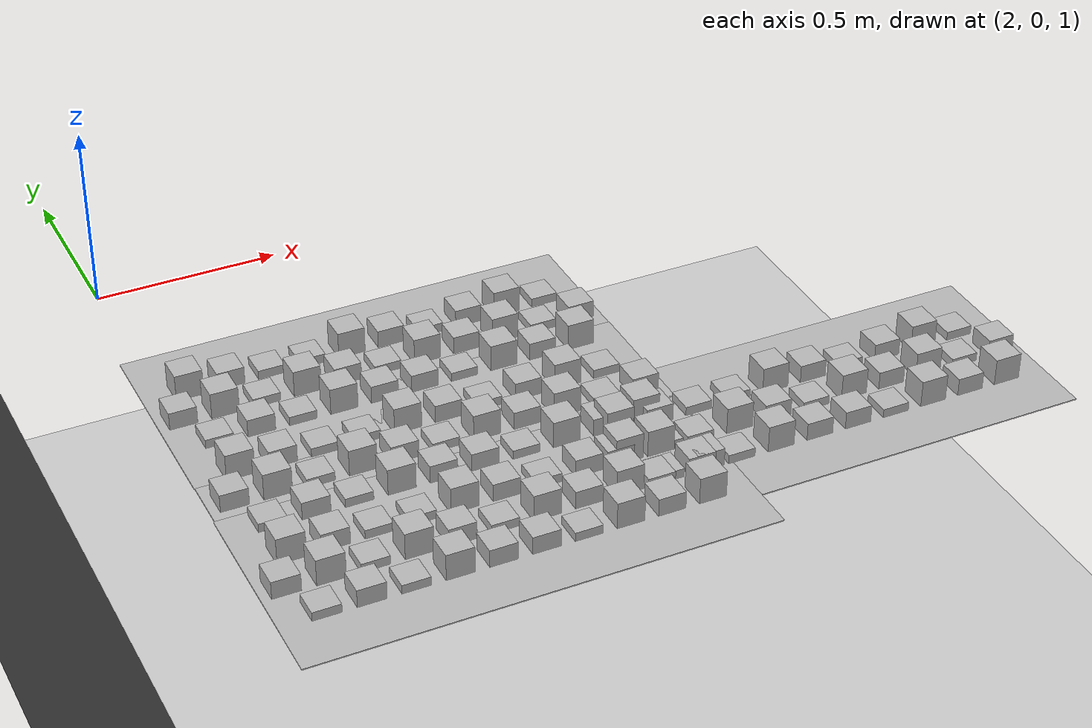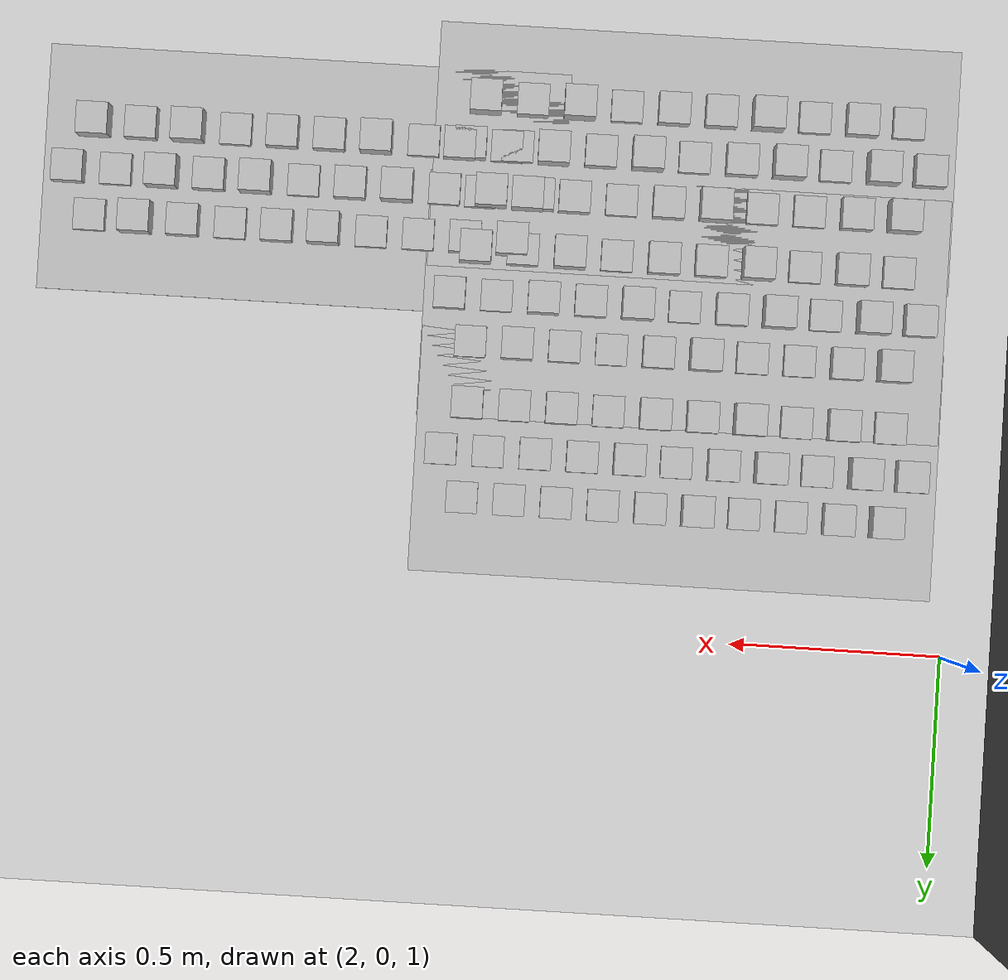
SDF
<sdf version="1.6">
 <world name="default">
  <model name="ground_plane">
   <static>1</static>
   <link name="link">
    <collision name="collision">
     <geometry><plane><normal>0 0 1</normal><size>100 100</size></plane></geometry>
     <surface><friction><ode><mu>100</mu><mu2>50</mu2></ode></friction></surface>
    </collision>
    <visual name="visual">
     <cast_shadows>0</cast_shadows>
     <geometry><plane><normal>0 0 1</normal><size>100 100</size></plane></geometry>
     <material>
      <script><uri>file://media/materials/scripts/gazebo.material</uri><name>Gazebo/Grey</name></script>
     </material>
    </visual>
   </link>
  </model>
  <model name="asphalt_plane">
   <static>1</static>
   <link name="link">
    <collision name="collision">
     <geometry><box><size>20 20 1.4296</size></box></geometry>
     <surface><friction><ode><mu>100</mu><mu2>50</mu2></ode></friction></surface>
    </collision>
    <visual name="visual">
     <cast_shadows>0</cast_shadows>
     <geometry><box><size>20 20 1.4296</size></box></geometry>
     <material>
      <script>
       <uri>model://asphalt_plane/materials/scripts</uri>
       <uri>model://asphalt_plane/materials/textures</uri>
       <name>vrc/asphalt</name>
      </script>
     </material>
    </visual>
   </link>
   <pose>-8.53833 2.29833 0.165376 0 -0 0</pose>
  </model>
  <model name="frc2016_roughterrain_1_clone_8">
   <static>0</static>
   <link name="link">
    <visual name="platform">
     <pose>0 0 0.08269 0 -0 0</pose>
     <geometry><box><size>1.27 0.5969 0.003175</size></box></geometry>
    </visual>
    <collision name="platform">
     <pose>0 0 0.08269 0 -0 0</pose>
     <geometry><box><size>1.27 0.5969 0.003175</size></box></geometry>
    </collision>
    <visual name="row1_block1_sm">
     <pose>0.51435 0.1143 0.09698 0 -0 0</pose>
     <geometry><box><size>0.0762 0.0762 0.0254</size></box></geometry>
    </visual>
    <collision name="row1_block1_sm">
     <pose>0.51435 0.1143 0.09698 0 -0 0</pose>
     <geometry><box><size>0.0762 0.0762 0.0254</size></box></geometry>
    </collision>
    <visual name="row1_block2_lg">
     <pose>0.40005 0.1143 0.12238 0 -0 0</pose>
     <geometry><box><size>0.0762 0.0762 0.0762</size></box></geometry>
    </visual>
    <collision name="row1_block2_lg">
     <pose>0.40005 0.1143 0.12238 0 -0 0</pose>
     <geometry><box><size>0.0762 0.0762 0.0762</size></box></geometry>
    </collision>
    <visual name="row1_block3_md">
     <pose>0.28575 0.1143 0.10968 0 -0 0</pose>
     <geometry><box><size>0.0762 0.0762 0.0508</size></box></geometry>
    </visual>
    <collision name="row1_block3_md">
     <pose>0.28575 0.1143 0.10968 0 -0 0</pose>
     <geometry><box><size>0.0762 0.0762 0.0508</size></box></geometry>
    </collision>
    <visual name="row1_block4_sm">
     <pose>0.17145 0.1143 0.09698 0 -0 0</pose>
     <geometry><box><size>0.0762 0.0762 0.0254</size></box></geometry>
    </visual>
    <collision name="row1_block4_sm">
     <pose>0.17145 0.1143 0.09698 0 -0 0</pose>
     <geometry><box><size>0.0762 0.0762 0.0254</size></box></geometry>
    </collision>
    <visual name="row1_block5_md">
     <pose>0.05715 0.1143 0.10968 0 -0 0</pose>
     <geometry><box><size>0.0762 0.0762 0.0508</size></box></geometry>
    </visual>
    <collision name="row1_block5_md">
     <pose>0.05715 0.1143 0.10968 0 -0 0</pose>
     <geometry><box><size>0.0762 0.0762 0.0508</size></box></geometry>
    </collision>
    <visual name="row1_block6_lg">
     <pose>-0.05715 0.1143 0.12238 0 -0 0</pose>
     <geometry><box><size>0.0762 0.0762 0.0762</size></box></geometry>
    </visual>
    <collision name="row1_block6_lg">
     <pose>-0.05715 0.1143 0.12238 0 -0 0</pose>
     <geometry><box><size>0.0762 0.0762 0.0762</size></box></geometry>
    </collision>
    <visual name="row1_block7_sm">
     <pose>-0.17145 0.1143 0.09698 0 -0 0</pose>
     <geometry><box><size>0.0762 0.0762 0.0254</size></box></geometry>
    </visual>
    <collision name="row1_block7_sm">
     <pose>-0.17145 0.1143 0.09698 0 -0 0</pose>
     <geometry><box><size>0.0762 0.0762 0.0254</size></box></geometry>
    </collision>
    <visual name="row1_block8_sm">
     <pose>-0.28575 0.1143 0.09698 0 -0 0</pose>
     <geometry><box><size>0.0762 0.0762 0.0254</size></box></geometry>
    </visual>
    <collision name="row1_block8_sm">
     <pose>-0.28575 0.1143 0.09698 0 -0 0</pose>
     <geometry><box><size>0.0762 0.0762 0.0254</size></box></geometry>
    </collision>
    <visual name="row1_block9_md">
     <pose>-0.40005 0.1143 0.10968 0 -0 0</pose>
     <geometry><box><size>0.0762 0.0762 0.0508</size></box></geometry>
    </visual>
    <collision name="row1_block9_md">
     <pose>-0.40005 0.1143 0.10968 0 -0 0</pose>
     <geometry><box><size>0.0762 0.0762 0.0508</size></box></geometry>
    </collision>
    <visual name="row1_block10_lg">
     <pose>-0.51435 0.1143 0.12238 0 -0 0</pose>
     <geometry><box><size>0.0762 0.0762 0.0762</size></box></geometry>
    </visual>
    <collision name="row1_block10_lg">
     <pose>-0.51435 0.1143 0.12238 0 -0 0</pose>
     <geometry><box><size>0.0762 0.0762 0.0762</size></box></geometry>
    </collision>
    <visual name="row2_block1_md">
     <pose>0.5715 0 0.10968 0 -0 0</pose>
     <geometry><box><size>0.0762 0.0762 0.0508</size></box></geometry>
    </visual>
    <collision name="row2_block1_md">
     <pose>0.5715 0 0.10968 0 -0 0</pose>
     <geometry><box><size>0.0762 0.0762 0.0508</size></box></geometry>
    </collision>
    <visual name="row2_block2_sm">
     <pose>0.4572 0 0.09698 0 -0 0</pose>
     <geometry><box><size>0.0762 0.0762 0.0254</size></box></geometry>
    </visual>
    <collision name="row2_block2_sm">
     <pose>0.4572 0 0.09698 0 -0 0</pose>
     <geometry><box><size>0.0762 0.0762 0.0254</size></box></geometry>
    </collision>
    <visual name="row2_block3_lg">
     <pose>0.3429 0 0.12238 0 -0 0</pose>
     <geometry><box><size>0.0762 0.0762 0.0762</size></box></geometry>
    </visual>
    <collision name="row2_block3_lg">
     <pose>0.3429 0 0.12238 0 -0 0</pose>
     <geometry><box><size>0.0762 0.0762 0.0762</size></box></geometry>
    </collision>
    <visual name="row2_block4_md">
     <pose>0.2286 0 0.10968 0 -0 0</pose>
     <geometry><box><size>0.0762 0.0762 0.0508</size></box></geometry>
    </visual>
    <collision name="row2_block4_md">
     <pose>0.2286 0 0.10968 0 -0 0</pose>
     <geometry><box><size>0.0762 0.0762 0.0508</size></box></geometry>
    </collision>
    <visual name="row2_block5_lg">
     <pose>0.1143 0 0.12238 0 -0 0</pose>
     <geometry><box><size>0.0762 0.0762 0.0762</size></box></geometry>
    </visual>
    <collision name="row2_block5_lg">
     <pose>0.1143 0 0.12238 0 -0 0</pose>
     <geometry><box><size>0.0762 0.0762 0.0762</size></box></geometry>
    </collision>
    <visual name="row2_block6_sm">
     <pose>0 0 0.09698 0 -0 0</pose>
     <geometry><box><size>0.0762 0.0762 0.0254</size></box></geometry>
    </visual>
    <collision name="row2_block6_sm">
     <pose>0 0 0.09698 0 -0 0</pose>
     <geometry><box><size>0.0762 0.0762 0.0254</size></box></geometry>
    </collision>
    <visual name="row2_block7_md">
     <pose>-0.1143 0 0.10968 0 -0 0</pose>
     <geometry><box><size>0.0762 0.0762 0.0508</size></box></geometry>
    </visual>
    <collision name="row2_block7_md">
     <pose>-0.1143 0 0.10968 0 -0 0</pose>
     <geometry><box><size>0.0762 0.0762 0.0508</size></box></geometry>
    </collision>
    <visual name="row2_block8_lg">
     <pose>-0.2286 0 0.12238 0 -0 0</pose>
     <geometry><box><size>0.0762 0.0762 0.0762</size></box></geometry>
    </visual>
    <collision name="row2_block8_lg">
     <pose>-0.2286 0 0.12238 0 -0 0</pose>
     <geometry><box><size>0.0762 0.0762 0.0762</size></box></geometry>
    </collision>
    <visual name="row2_block9_sm">
     <pose>-0.3429 0 0.09698 0 -0 0</pose>
     <geometry><box><size>0.0762 0.0762 0.0254</size></box></geometry>
    </visual>
    <collision name="row2_block9_sm">
     <pose>-0.3429 0 0.09698 0 -0 0</pose>
     <geometry><box><size>0.0762 0.0762 0.0254</size></box></geometry>
    </collision>
    <visual name="row2_block10_lg">
     <pose>-0.4572 0 0.12238 0 -0 0</pose>
     <geometry><box><size>0.0762 0.0762 0.0762</size></box></geometry>
    </visual>
    <collision name="row2_block10_lg">
     <pose>-0.4572 0 0.12238 0 -0 0</pose>
     <geometry><box><size>0.0762 0.0762 0.0762</size></box></geometry>
    </collision>
    <visual name="row2_block11_md">
     <pose>-0.5715 0 0.10968 0 -0 0</pose>
     <geometry><box><size>0.0762 0.0762 0.0508</size></box></geometry>
    </visual>
    <collision name="row2_block11_md">
     <pose>-0.5715 0 0.10968 0 -0 0</pose>
     <geometry><box><size>0.0762 0.0762 0.0508</size></box></geometry>
    </collision>
    <visual name="row3_block1_lg">
     <pose>0.51435 -0.1143 0.12238 0 -0 0</pose>
     <geometry><box><size>0.0762 0.0762 0.0762</size></box></geometry>
    </visual>
    <collision name="row3_block1_lg">
     <pose>0.51435 -0.1143 0.12238 0 -0 0</pose>
     <geometry><box><size>0.0762 0.0762 0.0762</size></box></geometry>
    </collision>
    <visual name="row3_block2_md">
     <pose>0.40005 -0.1143 0.10968 0 -0 0</pose>
     <geometry><box><size>0.0762 0.0762 0.0508</size></box></geometry>
    </visual>
    <collision name="row3_block2_md">
     <pose>0.40005 -0.1143 0.10968 0 -0 0</pose>
     <geometry><box><size>0.0762 0.0762 0.0508</size></box></geometry>
    </collision>
    <visual name="row3_block3_lg">
     <pose>0.28575 -0.1143 0.12238 0 -0 0</pose>
     <geometry><box><size>0.0762 0.0762 0.0762</size></box></geometry>
    </visual>
    <collision name="row3_block3_lg">
     <pose>0.28575 -0.1143 0.12238 0 -0 0</pose>
     <geometry><box><size>0.0762 0.0762 0.0762</size></box></geometry>
    </collision>
    <visual name="row3_block4_sm">
     <pose>0.17145 -0.1143 0.09698 0 -0 0</pose>
     <geometry><box><size>0.0762 0.0762 0.0254</size></box></geometry>
    </visual>
    <collision name="row3_block4_sm">
     <pose>0.17145 -0.1143 0.09698 0 -0 0</pose>
     <geometry><box><size>0.0762 0.0762 0.0254</size></box></geometry>
    </collision>
    <visual name="row3_block5_md">
     <pose>0.05715 -0.1143 0.10968 0 -0 0</pose>
     <geometry><box><size>0.0762 0.0762 0.0508</size></box></geometry>
    </visual>
    <collision name="row3_block5_md">
     <pose>0.05715 -0.1143 0.10968 0 -0 0</pose>
     <geometry><box><size>0.0762 0.0762 0.0508</size></box></geometry>
    </collision>
    <visual name="row3_block6_md">
     <pose>-0.05715 -0.1143 0.10968 0 -0 0</pose>
     <geometry><box><size>0.0762 0.0762 0.0508</size></box></geometry>
    </visual>
    <collision name="row3_block6_md">
     <pose>-0.05715 -0.1143 0.10968 0 -0 0</pose>
     <geometry><box><size>0.0762 0.0762 0.0508</size></box></geometry>
    </collision>
    <visual name="row3_block7_lg">
     <pose>-0.17145 -0.1143 0.12238 0 -0 0</pose>
     <geometry><box><size>0.0762 0.0762 0.0762</size></box></geometry>
    </visual>
    <collision name="row3_block7_lg">
     <pose>-0.17145 -0.1143 0.12238 0 -0 0</pose>
     <geometry><box><size>0.0762 0.0762 0.0762</size></box></geometry>
    </collision>
    <visual name="row3_block8_sm">
     <pose>-0.28575 -0.1143 0.09698 0 -0 0</pose>
     <geometry><box><size>0.0762 0.0762 0.0254</size></box></geometry>
    </visual>
    <collision name="row3_block8_sm">
     <pose>-0.28575 -0.1143 0.09698 0 -0 0</pose>
     <geometry><box><size>0.0762 0.0762 0.0254</size></box></geometry>
    </collision>
    <visual name="row3_block9_md">
     <pose>-0.40005 -0.1143 0.10968 0 -0 0</pose>
     <geometry><box><size>0.0762 0.0762 0.0508</size></box></geometry>
    </visual>
    <collision name="row3_block9_md">
     <pose>-0.40005 -0.1143 0.10968 0 -0 0</pose>
     <geometry><box><size>0.0762 0.0762 0.0508</size></box></geometry>
    </collision>
    <visual name="row3_block10_sm">
     <pose>-0.51435 -0.1143 0.09698 0 -0 0</pose>
     <geometry><box><size>0.0762 0.0762 0.0254</size></box></geometry>
    </visual>
    <collision name="row3_block10_sm">
     <pose>-0.51435 -0.1143 0.09698 0 -0 0</pose>
     <geometry><box><size>0.0762 0.0762 0.0254</size></box></geometry>
    </collision>
   </link>
   <pose>2.6413 -0.424382 0.777128 0 -0 0</pose>
  </model>
  <model name="frc2016_roughterrain_1_clone_9">
   <static>0</static>
   <link name="link">
    <visual name="platform">
     <pose>0 0 0.08269 0 -0 0</pose>
     <geometry><box><size>1.27 0.5969 0.003175</size></box></geometry>
    </visual>
    <collision name="platform">
     <pose>0 0 0.08269 0 -0 0</pose>
     <geometry><box><size>1.27 0.5969 0.003175</size></box></geometry>
    </collision>
    <visual name="row1_block1_sm">
     <pose>0.51435 0.1143 0.09698 0 -0 0</pose>
     <geometry><box><size>0.0762 0.0762 0.0254</size></box></geometry>
    </visual>
    <collision name="row1_block1_sm">
     <pose>0.51435 0.1143 0.09698 0 -0 0</pose>
     <geometry><box><size>0.0762 0.0762 0.0254</size></box></geometry>
    </collision>
    <visual name="row1_block2_lg">
     <pose>0.40005 0.1143 0.12238 0 -0 0</pose>
     <geometry><box><size>0.0762 0.0762 0.0762</size></box></geometry>
    </visual>
    <collision name="row1_block2_lg">
     <pose>0.40005 0.1143 0.12238 0 -0 0</pose>
     <geometry><box><size>0.0762 0.0762 0.0762</size></box></geometry>
    </collision>
    <visual name="row1_block3_md">
     <pose>0.28575 0.1143 0.10968 0 -0 0</pose>
     <geometry><box><size>0.0762 0.0762 0.0508</size></box></geometry>
    </visual>
    <collision name="row1_block3_md">
     <pose>0.28575 0.1143 0.10968 0 -0 0</pose>
     <geometry><box><size>0.0762 0.0762 0.0508</size></box></geometry>
    </collision>
    <visual name="row1_block4_sm">
     <pose>0.17145 0.1143 0.09698 0 -0 0</pose>
     <geometry><box><size>0.0762 0.0762 0.0254</size></box></geometry>
    </visual>
    <collision name="row1_block4_sm">
     <pose>0.17145 0.1143 0.09698 0 -0 0</pose>
     <geometry><box><size>0.0762 0.0762 0.0254</size></box></geometry>
    </collision>
    <visual name="row1_block5_md">
     <pose>0.05715 0.1143 0.10968 0 -0 0</pose>
     <geometry><box><size>0.0762 0.0762 0.0508</size></box></geometry>
    </visual>
    <collision name="row1_block5_md">
     <pose>0.05715 0.1143 0.10968 0 -0 0</pose>
     <geometry><box><size>0.0762 0.0762 0.0508</size></box></geometry>
    </collision>
    <visual name="row1_block6_lg">
     <pose>-0.05715 0.1143 0.12238 0 -0 0</pose>
     <geometry><box><size>0.0762 0.0762 0.0762</size></box></geometry>
    </visual>
    <collision name="row1_block6_lg">
     <pose>-0.05715 0.1143 0.12238 0 -0 0</pose>
     <geometry><box><size>0.0762 0.0762 0.0762</size></box></geometry>
    </collision>
    <visual name="row1_block7_sm">
     <pose>-0.17145 0.1143 0.09698 0 -0 0</pose>
     <geometry><box><size>0.0762 0.0762 0.0254</size></box></geometry>
    </visual>
    <collision name="row1_block7_sm">
     <pose>-0.17145 0.1143 0.09698 0 -0 0</pose>
     <geometry><box><size>0.0762 0.0762 0.0254</size></box></geometry>
    </collision>
    <visual name="row1_block8_sm">
     <pose>-0.28575 0.1143 0.09698 0 -0 0</pose>
     <geometry><box><size>0.0762 0.0762 0.0254</size></box></geometry>
    </visual>
    <collision name="row1_block8_sm">
     <pose>-0.28575 0.1143 0.09698 0 -0 0</pose>
     <geometry><box><size>0.0762 0.0762 0.0254</size></box></geometry>
    </collision>
    <visual name="row1_block9_md">
     <pose>-0.40005 0.1143 0.10968 0 -0 0</pose>
     <geometry><box><size>0.0762 0.0762 0.0508</size></box></geometry>
    </visual>
    <collision name="row1_block9_md">
     <pose>-0.40005 0.1143 0.10968 0 -0 0</pose>
     <geometry><box><size>0.0762 0.0762 0.0508</size></box></geometry>
    </collision>
    <visual name="row1_block10_lg">
     <pose>-0.51435 0.1143 0.12238 0 -0 0</pose>
     <geometry><box><size>0.0762 0.0762 0.0762</size></box></geometry>
    </visual>
    <collision name="row1_block10_lg">
     <pose>-0.51435 0.1143 0.12238 0 -0 0</pose>
     <geometry><box><size>0.0762 0.0762 0.0762</size></box></geometry>
    </collision>
    <visual name="row2_block1_md">
     <pose>0.5715 0 0.10968 0 -0 0</pose>
     <geometry><box><size>0.0762 0.0762 0.0508</size></box></geometry>
    </visual>
    <collision name="row2_block1_md">
     <pose>0.5715 0 0.10968 0 -0 0</pose>
     <geometry><box><size>0.0762 0.0762 0.0508</size></box></geometry>
    </collision>
    <visual name="row2_block2_sm">
     <pose>0.4572 0 0.09698 0 -0 0</pose>
     <geometry><box><size>0.0762 0.0762 0.0254</size></box></geometry>
    </visual>
    <collision name="row2_block2_sm">
     <pose>0.4572 0 0.09698 0 -0 0</pose>
     <geometry><box><size>0.0762 0.0762 0.0254</size></box></geometry>
    </collision>
    <visual name="row2_block3_lg">
     <pose>0.3429 0 0.12238 0 -0 0</pose>
     <geometry><box><size>0.0762 0.0762 0.0762</size></box></geometry>
    </visual>
    <collision name="row2_block3_lg">
     <pose>0.3429 0 0.12238 0 -0 0</pose>
     <geometry><box><size>0.0762 0.0762 0.0762</size></box></geometry>
    </collision>
    <visual name="row2_block4_md">
     <pose>0.2286 0 0.10968 0 -0 0</pose>
     <geometry><box><size>0.0762 0.0762 0.0508</size></box></geometry>
    </visual>
    <collision name="row2_block4_md">
     <pose>0.2286 0 0.10968 0 -0 0</pose>
     <geometry><box><size>0.0762 0.0762 0.0508</size></box></geometry>
    </collision>
    <visual name="row2_block5_lg">
     <pose>0.1143 0 0.12238 0 -0 0</pose>
     <geometry><box><size>0.0762 0.0762 0.0762</size></box></geometry>
    </visual>
    <collision name="row2_block5_lg">
     <pose>0.1143 0 0.12238 0 -0 0</pose>
     <geometry><box><size>0.0762 0.0762 0.0762</size></box></geometry>
    </collision>
    <visual name="row2_block6_sm">
     <pose>0 0 0.09698 0 -0 0</pose>
     <geometry><box><size>0.0762 0.0762 0.0254</size></box></geometry>
    </visual>
    <collision name="row2_block6_sm">
     <pose>0 0 0.09698 0 -0 0</pose>
     <geometry><box><size>0.0762 0.0762 0.0254</size></box></geometry>
    </collision>
    <visual name="row2_block7_md">
     <pose>-0.1143 0 0.10968 0 -0 0</pose>
     <geometry><box><size>0.0762 0.0762 0.0508</size></box></geometry>
    </visual>
    <collision name="row2_block7_md">
     <pose>-0.1143 0 0.10968 0 -0 0</pose>
     <geometry><box><size>0.0762 0.0762 0.0508</size></box></geometry>
    </collision>
    <visual name="row2_block8_lg">
     <pose>-0.2286 0 0.12238 0 -0 0</pose>
     <geometry><box><size>0.0762 0.0762 0.0762</size></box></geometry>
    </visual>
    <collision name="row2_block8_lg">
     <pose>-0.2286 0 0.12238 0 -0 0</pose>
     <geometry><box><size>0.0762 0.0762 0.0762</size></box></geometry>
    </collision>
    <visual name="row2_block9_sm">
     <pose>-0.3429 0 0.09698 0 -0 0</pose>
     <geometry><box><size>0.0762 0.0762 0.0254</size></box></geometry>
    </visual>
    <collision name="row2_block9_sm">
     <pose>-0.3429 0 0.09698 0 -0 0</pose>
     <geometry><box><size>0.0762 0.0762 0.0254</size></box></geometry>
    </collision>
    <visual name="row2_block10_lg">
     <pose>-0.4572 0 0.12238 0 -0 0</pose>
     <geometry><box><size>0.0762 0.0762 0.0762</size></box></geometry>
    </visual>
    <collision name="row2_block10_lg">
     <pose>-0.4572 0 0.12238 0 -0 0</pose>
     <geometry><box><size>0.0762 0.0762 0.0762</size></box></geometry>
    </collision>
    <visual name="row2_block11_md">
     <pose>-0.5715 0 0.10968 0 -0 0</pose>
     <geometry><box><size>0.0762 0.0762 0.0508</size></box></geometry>
    </visual>
    <collision name="row2_block11_md">
     <pose>-0.5715 0 0.10968 0 -0 0</pose>
     <geometry><box><size>0.0762 0.0762 0.0508</size></box></geometry>
    </collision>
    <visual name="row3_block1_lg">
     <pose>0.51435 -0.1143 0.12238 0 -0 0</pose>
     <geometry><box><size>0.0762 0.0762 0.0762</size></box></geometry>
    </visual>
    <collision name="row3_block1_lg">
     <pose>0.51435 -0.1143 0.12238 0 -0 0</pose>
     <geometry><box><size>0.0762 0.0762 0.0762</size></box></geometry>
    </collision>
    <visual name="row3_block2_md">
     <pose>0.40005 -0.1143 0.10968 0 -0 0</pose>
     <geometry><box><size>0.0762 0.0762 0.0508</size></box></geometry>
    </visual>
    <collision name="row3_block2_md">
     <pose>0.40005 -0.1143 0.10968 0 -0 0</pose>
     <geometry><box><size>0.0762 0.0762 0.0508</size></box></geometry>
    </collision>
    <visual name="row3_block3_lg">
     <pose>0.28575 -0.1143 0.12238 0 -0 0</pose>
     <geometry><box><size>0.0762 0.0762 0.0762</size></box></geometry>
    </visual>
    <collision name="row3_block3_lg">
     <pose>0.28575 -0.1143 0.12238 0 -0 0</pose>
     <geometry><box><size>0.0762 0.0762 0.0762</size></box></geometry>
    </collision>
    <visual name="row3_block4_sm">
     <pose>0.17145 -0.1143 0.09698 0 -0 0</pose>
     <geometry><box><size>0.0762 0.0762 0.0254</size></box></geometry>
    </visual>
    <collision name="row3_block4_sm">
     <pose>0.17145 -0.1143 0.09698 0 -0 0</pose>
     <geometry><box><size>0.0762 0.0762 0.0254</size></box></geometry>
    </collision>
    <visual name="row3_block5_md">
     <pose>0.05715 -0.1143 0.10968 0 -0 0</pose>
     <geometry><box><size>0.0762 0.0762 0.0508</size></box></geometry>
    </visual>
    <collision name="row3_block5_md">
     <pose>0.05715 -0.1143 0.10968 0 -0 0</pose>
     <geometry><box><size>0.0762 0.0762 0.0508</size></box></geometry>
    </collision>
    <visual name="row3_block6_md">
     <pose>-0.05715 -0.1143 0.10968 0 -0 0</pose>
     <geometry><box><size>0.0762 0.0762 0.0508</size></box></geometry>
    </visual>
    <collision name="row3_block6_md">
     <pose>-0.05715 -0.1143 0.10968 0 -0 0</pose>
     <geometry><box><size>0.0762 0.0762 0.0508</size></box></geometry>
    </collision>
    <visual name="row3_block7_lg">
     <pose>-0.17145 -0.1143 0.12238 0 -0 0</pose>
     <geometry><box><size>0.0762 0.0762 0.0762</size></box></geometry>
    </visual>
    <collision name="row3_block7_lg">
     <pose>-0.17145 -0.1143 0.12238 0 -0 0</pose>
     <geometry><box><size>0.0762 0.0762 0.0762</size></box></geometry>
    </collision>
    <visual name="row3_block8_sm">
     <pose>-0.28575 -0.1143 0.09698 0 -0 0</pose>
     <geometry><box><size>0.0762 0.0762 0.0254</size></box></geometry>
    </visual>
    <collision name="row3_block8_sm">
     <pose>-0.28575 -0.1143 0.09698 0 -0 0</pose>
     <geometry><box><size>0.0762 0.0762 0.0254</size></box></geometry>
    </collision>
    <visual name="row3_block9_md">
     <pose>-0.40005 -0.1143 0.10968 0 -0 0</pose>
     <geometry><box><size>0.0762 0.0762 0.0508</size></box></geometry>
    </visual>
    <collision name="row3_block9_md">
     <pose>-0.40005 -0.1143 0.10968 0 -0 0</pose>
     <geometry><box><size>0.0762 0.0762 0.0508</size></box></geometry>
    </collision>
    <visual name="row3_block10_sm">
     <pose>-0.51435 -0.1143 0.09698 0 -0 0</pose>
     <geometry><box><size>0.0762 0.0762 0.0254</size></box></geometry>
    </visual>
    <collision name="row3_block10_sm">
     <pose>-0.51435 -0.1143 0.09698 0 -0 0</pose>
     <geometry><box><size>0.0762 0.0762 0.0254</size></box></geometry>
    </collision>
   </link>
   <pose>2.64305 -0.802714 0.777128 0 -0 0</pose>
  </model>
  <model name="frc2016_roughterrain_1_clone_12">
   <static>0</static>
   <link name="link">
    <visual name="platform">
     <pose>0 0 0.08269 0 -0 0</pose>
     <geometry><box><size>1.27 0.5969 0.003175</size></box></geometry>
    </visual>
    <collision name="platform">
     <pose>0 0 0.08269 0 -0 0</pose>
     <geometry><box><size>1.27 0.5969 0.003175</size></box></geometry>
    </collision>
    <visual name="row1_block1_sm">
     <pose>0.51435 0.1143 0.09698 0 -0 0</pose>
     <geometry><box><size>0.0762 0.0762 0.0254</size></box></geometry>
    </visual>
    <collision name="row1_block1_sm">
     <pose>0.51435 0.1143 0.09698 0 -0 0</pose>
     <geometry><box><size>0.0762 0.0762 0.0254</size></box></geometry>
    </collision>
    <visual name="row1_block2_lg">
     <pose>0.40005 0.1143 0.12238 0 -0 0</pose>
     <geometry><box><size>0.0762 0.0762 0.0762</size></box></geometry>
    </visual>
    <collision name="row1_block2_lg">
     <pose>0.40005 0.1143 0.12238 0 -0 0</pose>
     <geometry><box><size>0.0762 0.0762 0.0762</size></box></geometry>
    </collision>
    <visual name="row1_block3_md">
     <pose>0.28575 0.1143 0.10968 0 -0 0</pose>
     <geometry><box><size>0.0762 0.0762 0.0508</size></box></geometry>
    </visual>
    <collision name="row1_block3_md">
     <pose>0.28575 0.1143 0.10968 0 -0 0</pose>
     <geometry><box><size>0.0762 0.0762 0.0508</size></box></geometry>
    </collision>
    <visual name="row1_block4_sm">
     <pose>0.17145 0.1143 0.09698 0 -0 0</pose>
     <geometry><box><size>0.0762 0.0762 0.0254</size></box></geometry>
    </visual>
    <collision name="row1_block4_sm">
     <pose>0.17145 0.1143 0.09698 0 -0 0</pose>
     <geometry><box><size>0.0762 0.0762 0.0254</size></box></geometry>
    </collision>
    <visual name="row1_block5_md">
     <pose>0.05715 0.1143 0.10968 0 -0 0</pose>
     <geometry><box><size>0.0762 0.0762 0.0508</size></box></geometry>
    </visual>
    <collision name="row1_block5_md">
     <pose>0.05715 0.1143 0.10968 0 -0 0</pose>
     <geometry><box><size>0.0762 0.0762 0.0508</size></box></geometry>
    </collision>
    <visual name="row1_block6_lg">
     <pose>-0.05715 0.1143 0.12238 0 -0 0</pose>
     <geometry><box><size>0.0762 0.0762 0.0762</size></box></geometry>
    </visual>
    <collision name="row1_block6_lg">
     <pose>-0.05715 0.1143 0.12238 0 -0 0</pose>
     <geometry><box><size>0.0762 0.0762 0.0762</size></box></geometry>
    </collision>
    <visual name="row1_block7_sm">
     <pose>-0.17145 0.1143 0.09698 0 -0 0</pose>
     <geometry><box><size>0.0762 0.0762 0.0254</size></box></geometry>
    </visual>
    <collision name="row1_block7_sm">
     <pose>-0.17145 0.1143 0.09698 0 -0 0</pose>
     <geometry><box><size>0.0762 0.0762 0.0254</size></box></geometry>
    </collision>
    <visual name="row1_block8_sm">
     <pose>-0.28575 0.1143 0.09698 0 -0 0</pose>
     <geometry><box><size>0.0762 0.0762 0.0254</size></box></geometry>
    </visual>
    <collision name="row1_block8_sm">
     <pose>-0.28575 0.1143 0.09698 0 -0 0</pose>
     <geometry><box><size>0.0762 0.0762 0.0254</size></box></geometry>
    </collision>
    <visual name="row1_block9_md">
     <pose>-0.40005 0.1143 0.10968 0 -0 0</pose>
     <geometry><box><size>0.0762 0.0762 0.0508</size></box></geometry>
    </visual>
    <collision name="row1_block9_md">
     <pose>-0.40005 0.1143 0.10968 0 -0 0</pose>
     <geometry><box><size>0.0762 0.0762 0.0508</size></box></geometry>
    </collision>
    <visual name="row1_block10_lg">
     <pose>-0.51435 0.1143 0.12238 0 -0 0</pose>
     <geometry><box><size>0.0762 0.0762 0.0762</size></box></geometry>
    </visual>
    <collision name="row1_block10_lg">
     <pose>-0.51435 0.1143 0.12238 0 -0 0</pose>
     <geometry><box><size>0.0762 0.0762 0.0762</size></box></geometry>
    </collision>
    <visual name="row2_block1_md">
     <pose>0.5715 0 0.10968 0 -0 0</pose>
     <geometry><box><size>0.0762 0.0762 0.0508</size></box></geometry>
    </visual>
    <collision name="row2_block1_md">
     <pose>0.5715 0 0.10968 0 -0 0</pose>
     <geometry><box><size>0.0762 0.0762 0.0508</size></box></geometry>
    </collision>
    <visual name="row2_block2_sm">
     <pose>0.4572 0 0.09698 0 -0 0</pose>
     <geometry><box><size>0.0762 0.0762 0.0254</size></box></geometry>
    </visual>
    <collision name="row2_block2_sm">
     <pose>0.4572 0 0.09698 0 -0 0</pose>
     <geometry><box><size>0.0762 0.0762 0.0254</size></box></geometry>
    </collision>
    <visual name="row2_block3_lg">
     <pose>0.3429 0 0.12238 0 -0 0</pose>
     <geometry><box><size>0.0762 0.0762 0.0762</size></box></geometry>
    </visual>
    <collision name="row2_block3_lg">
     <pose>0.3429 0 0.12238 0 -0 0</pose>
     <geometry><box><size>0.0762 0.0762 0.0762</size></box></geometry>
    </collision>
    <visual name="row2_block4_md">
     <pose>0.2286 0 0.10968 0 -0 0</pose>
     <geometry><box><size>0.0762 0.0762 0.0508</size></box></geometry>
    </visual>
    <collision name="row2_block4_md">
     <pose>0.2286 0 0.10968 0 -0 0</pose>
     <geometry><box><size>0.0762 0.0762 0.0508</size></box></geometry>
    </collision>
    <visual name="row2_block5_lg">
     <pose>0.1143 0 0.12238 0 -0 0</pose>
     <geometry><box><size>0.0762 0.0762 0.0762</size></box></geometry>
    </visual>
    <collision name="row2_block5_lg">
     <pose>0.1143 0 0.12238 0 -0 0</pose>
     <geometry><box><size>0.0762 0.0762 0.0762</size></box></geometry>
    </collision>
    <visual name="row2_block6_sm">
     <pose>0 0 0.09698 0 -0 0</pose>
     <geometry><box><size>0.0762 0.0762 0.0254</size></box></geometry>
    </visual>
    <collision name="row2_block6_sm">
     <pose>0 0 0.09698 0 -0 0</pose>
     <geometry><box><size>0.0762 0.0762 0.0254</size></box></geometry>
    </collision>
    <visual name="row2_block7_md">
     <pose>-0.1143 0 0.10968 0 -0 0</pose>
     <geometry><box><size>0.0762 0.0762 0.0508</size></box></geometry>
    </visual>
    <collision name="row2_block7_md">
     <pose>-0.1143 0 0.10968 0 -0 0</pose>
     <geometry><box><size>0.0762 0.0762 0.0508</size></box></geometry>
    </collision>
    <visual name="row2_block8_lg">
     <pose>-0.2286 0 0.12238 0 -0 0</pose>
     <geometry><box><size>0.0762 0.0762 0.0762</size></box></geometry>
    </visual>
    <collision name="row2_block8_lg">
     <pose>-0.2286 0 0.12238 0 -0 0</pose>
     <geometry><box><size>0.0762 0.0762 0.0762</size></box></geometry>
    </collision>
    <visual name="row2_block9_sm">
     <pose>-0.3429 0 0.09698 0 -0 0</pose>
     <geometry><box><size>0.0762 0.0762 0.0254</size></box></geometry>
    </visual>
    <collision name="row2_block9_sm">
     <pose>-0.3429 0 0.09698 0 -0 0</pose>
     <geometry><box><size>0.0762 0.0762 0.0254</size></box></geometry>
    </collision>
    <visual name="row2_block10_lg">
     <pose>-0.4572 0 0.12238 0 -0 0</pose>
     <geometry><box><size>0.0762 0.0762 0.0762</size></box></geometry>
    </visual>
    <collision name="row2_block10_lg">
     <pose>-0.4572 0 0.12238 0 -0 0</pose>
     <geometry><box><size>0.0762 0.0762 0.0762</size></box></geometry>
    </collision>
    <visual name="row2_block11_md">
     <pose>-0.5715 0 0.10968 0 -0 0</pose>
     <geometry><box><size>0.0762 0.0762 0.0508</size></box></geometry>
    </visual>
    <collision name="row2_block11_md">
     <pose>-0.5715 0 0.10968 0 -0 0</pose>
     <geometry><box><size>0.0762 0.0762 0.0508</size></box></geometry>
    </collision>
    <visual name="row3_block1_lg">
     <pose>0.51435 -0.1143 0.12238 0 -0 0</pose>
     <geometry><box><size>0.0762 0.0762 0.0762</size></box></geometry>
    </visual>
    <collision name="row3_block1_lg">
     <pose>0.51435 -0.1143 0.12238 0 -0 0</pose>
     <geometry><box><size>0.0762 0.0762 0.0762</size></box></geometry>
    </collision>
    <visual name="row3_block2_md">
     <pose>0.40005 -0.1143 0.10968 0 -0 0</pose>
     <geometry><box><size>0.0762 0.0762 0.0508</size></box></geometry>
    </visual>
    <collision name="row3_block2_md">
     <pose>0.40005 -0.1143 0.10968 0 -0 0</pose>
     <geometry><box><size>0.0762 0.0762 0.0508</size></box></geometry>
    </collision>
    <visual name="row3_block3_lg">
     <pose>0.28575 -0.1143 0.12238 0 -0 0</pose>
     <geometry><box><size>0.0762 0.0762 0.0762</size></box></geometry>
    </visual>
    <collision name="row3_block3_lg">
     <pose>0.28575 -0.1143 0.12238 0 -0 0</pose>
     <geometry><box><size>0.0762 0.0762 0.0762</size></box></geometry>
    </collision>
    <visual name="row3_block4_sm">
     <pose>0.17145 -0.1143 0.09698 0 -0 0</pose>
     <geometry><box><size>0.0762 0.0762 0.0254</size></box></geometry>
    </visual>
    <collision name="row3_block4_sm">
     <pose>0.17145 -0.1143 0.09698 0 -0 0</pose>
     <geometry><box><size>0.0762 0.0762 0.0254</size></box></geometry>
    </collision>
    <visual name="row3_block5_md">
     <pose>0.05715 -0.1143 0.10968 0 -0 0</pose>
     <geometry><box><size>0.0762 0.0762 0.0508</size></box></geometry>
    </visual>
    <collision name="row3_block5_md">
     <pose>0.05715 -0.1143 0.10968 0 -0 0</pose>
     <geometry><box><size>0.0762 0.0762 0.0508</size></box></geometry>
    </collision>
    <visual name="row3_block6_md">
     <pose>-0.05715 -0.1143 0.10968 0 -0 0</pose>
     <geometry><box><size>0.0762 0.0762 0.0508</size></box></geometry>
    </visual>
    <collision name="row3_block6_md">
     <pose>-0.05715 -0.1143 0.10968 0 -0 0</pose>
     <geometry><box><size>0.0762 0.0762 0.0508</size></box></geometry>
    </collision>
    <visual name="row3_block7_lg">
     <pose>-0.17145 -0.1143 0.12238 0 -0 0</pose>
     <geometry><box><size>0.0762 0.0762 0.0762</size></box></geometry>
    </visual>
    <collision name="row3_block7_lg">
     <pose>-0.17145 -0.1143 0.12238 0 -0 0</pose>
     <geometry><box><size>0.0762 0.0762 0.0762</size></box></geometry>
    </collision>
    <visual name="row3_block8_sm">
     <pose>-0.28575 -0.1143 0.09698 0 -0 0</pose>
     <geometry><box><size>0.0762 0.0762 0.0254</size></box></geometry>
    </visual>
    <collision name="row3_block8_sm">
     <pose>-0.28575 -0.1143 0.09698 0 -0 0</pose>
     <geometry><box><size>0.0762 0.0762 0.0254</size></box></geometry>
    </collision>
    <visual name="row3_block9_md">
     <pose>-0.40005 -0.1143 0.10968 0 -0 0</pose>
     <geometry><box><size>0.0762 0.0762 0.0508</size></box></geometry>
    </visual>
    <collision name="row3_block9_md">
     <pose>-0.40005 -0.1143 0.10968 0 -0 0</pose>
     <geometry><box><size>0.0762 0.0762 0.0508</size></box></geometry>
    </collision>
    <visual name="row3_block10_sm">
     <pose>-0.51435 -0.1143 0.09698 0 -0 0</pose>
     <geometry><box><size>0.0762 0.0762 0.0254</size></box></geometry>
    </visual>
    <collision name="row3_block10_sm">
     <pose>-0.51435 -0.1143 0.09698 0 -0 0</pose>
     <geometry><box><size>0.0762 0.0762 0.0254</size></box></geometry>
    </collision>
   </link>
   <pose>3.58518 -1.05424 0.777128 0 -0 0</pose>
  </model>
  <model name="frc2016_roughterrain_1_clone_11_clone_3">
   <static>0</static>
   <link name="link">
    <visual name="platform">
     <pose>0 0 0.08269 0 -0 0</pose>
     <geometry><box><size>1.27 0.5969 0.003175</size></box></geometry>
    </visual>
    <collision name="platform">
     <pose>0 0 0.08269 0 -0 0</pose>
     <geometry><box><size>1.27 0.5969 0.003175</size></box></geometry>
    </collision>
    <visual name="row1_block1_sm">
     <pose>0.51435 0.1143 0.09698 0 -0 0</pose>
     <geometry><box><size>0.0762 0.0762 0.0254</size></box></geometry>
    </visual>
    <collision name="row1_block1_sm">
     <pose>0.51435 0.1143 0.09698 0 -0 0</pose>
     <geometry><box><size>0.0762 0.0762 0.0254</size></box></geometry>
    </collision>
    <visual name="row1_block2_lg">
     <pose>0.40005 0.1143 0.12238 0 -0 0</pose>
     <geometry><box><size>0.0762 0.0762 0.0762</size></box></geometry>
    </visual>
    <collision name="row1_block2_lg">
     <pose>0.40005 0.1143 0.12238 0 -0 0</pose>
     <geometry><box><size>0.0762 0.0762 0.0762</size></box></geometry>
    </collision>
    <visual name="row1_block3_md">
     <pose>0.28575 0.1143 0.10968 0 -0 0</pose>
     <geometry><box><size>0.0762 0.0762 0.0508</size></box></geometry>
    </visual>
    <collision name="row1_block3_md">
     <pose>0.28575 0.1143 0.10968 0 -0 0</pose>
     <geometry><box><size>0.0762 0.0762 0.0508</size></box></geometry>
    </collision>
    <visual name="row1_block4_sm">
     <pose>0.17145 0.1143 0.09698 0 -0 0</pose>
     <geometry><box><size>0.0762 0.0762 0.0254</size></box></geometry>
    </visual>
    <collision name="row1_block4_sm">
     <pose>0.17145 0.1143 0.09698 0 -0 0</pose>
     <geometry><box><size>0.0762 0.0762 0.0254</size></box></geometry>
    </collision>
    <visual name="row1_block5_md">
     <pose>0.05715 0.1143 0.10968 0 -0 0</pose>
     <geometry><box><size>0.0762 0.0762 0.0508</size></box></geometry>
    </visual>
    <collision name="row1_block5_md">
     <pose>0.05715 0.1143 0.10968 0 -0 0</pose>
     <geometry><box><size>0.0762 0.0762 0.0508</size></box></geometry>
    </collision>
    <visual name="row1_block6_lg">
     <pose>-0.05715 0.1143 0.12238 0 -0 0</pose>
     <geometry><box><size>0.0762 0.0762 0.0762</size></box></geometry>
    </visual>
    <collision name="row1_block6_lg">
     <pose>-0.05715 0.1143 0.12238 0 -0 0</pose>
     <geometry><box><size>0.0762 0.0762 0.0762</size></box></geometry>
    </collision>
    <visual name="row1_block7_sm">
     <pose>-0.17145 0.1143 0.09698 0 -0 0</pose>
     <geometry><box><size>0.0762 0.0762 0.0254</size></box></geometry>
    </visual>
    <collision name="row1_block7_sm">
     <pose>-0.17145 0.1143 0.09698 0 -0 0</pose>
     <geometry><box><size>0.0762 0.0762 0.0254</size></box></geometry>
    </collision>
    <visual name="row1_block8_sm">
     <pose>-0.28575 0.1143 0.09698 0 -0 0</pose>
     <geometry><box><size>0.0762 0.0762 0.0254</size></box></geometry>
    </visual>
    <collision name="row1_block8_sm">
     <pose>-0.28575 0.1143 0.09698 0 -0 0</pose>
     <geometry><box><size>0.0762 0.0762 0.0254</size></box></geometry>
    </collision>
    <visual name="row1_block9_md">
     <pose>-0.40005 0.1143 0.10968 0 -0 0</pose>
     <geometry><box><size>0.0762 0.0762 0.0508</size></box></geometry>
    </visual>
    <collision name="row1_block9_md">
     <pose>-0.40005 0.1143 0.10968 0 -0 0</pose>
     <geometry><box><size>0.0762 0.0762 0.0508</size></box></geometry>
    </collision>
    <visual name="row1_block10_lg">
     <pose>-0.51435 0.1143 0.12238 0 -0 0</pose>
     <geometry><box><size>0.0762 0.0762 0.0762</size></box></geometry>
    </visual>
    <collision name="row1_block10_lg">
     <pose>-0.51435 0.1143 0.12238 0 -0 0</pose>
     <geometry><box><size>0.0762 0.0762 0.0762</size></box></geometry>
    </collision>
    <visual name="row2_block1_md">
     <pose>0.5715 0 0.10968 0 -0 0</pose>
     <geometry><box><size>0.0762 0.0762 0.0508</size></box></geometry>
    </visual>
    <collision name="row2_block1_md">
     <pose>0.5715 0 0.10968 0 -0 0</pose>
     <geometry><box><size>0.0762 0.0762 0.0508</size></box></geometry>
    </collision>
    <visual name="row2_block2_sm">
     <pose>0.4572 0 0.09698 0 -0 0</pose>
     <geometry><box><size>0.0762 0.0762 0.0254</size></box></geometry>
    </visual>
    <collision name="row2_block2_sm">
     <pose>0.4572 0 0.09698 0 -0 0</pose>
     <geometry><box><size>0.0762 0.0762 0.0254</size></box></geometry>
    </collision>
    <visual name="row2_block3_lg">
     <pose>0.3429 0 0.12238 0 -0 0</pose>
     <geometry><box><size>0.0762 0.0762 0.0762</size></box></geometry>
    </visual>
    <collision name="row2_block3_lg">
     <pose>0.3429 0 0.12238 0 -0 0</pose>
     <geometry><box><size>0.0762 0.0762 0.0762</size></box></geometry>
    </collision>
    <visual name="row2_block4_md">
     <pose>0.2286 0 0.10968 0 -0 0</pose>
     <geometry><box><size>0.0762 0.0762 0.0508</size></box></geometry>
    </visual>
    <collision name="row2_block4_md">
     <pose>0.2286 0 0.10968 0 -0 0</pose>
     <geometry><box><size>0.0762 0.0762 0.0508</size></box></geometry>
    </collision>
    <visual name="row2_block5_lg">
     <pose>0.1143 0 0.12238 0 -0 0</pose>
     <geometry><box><size>0.0762 0.0762 0.0762</size></box></geometry>
    </visual>
    <collision name="row2_block5_lg">
     <pose>0.1143 0 0.12238 0 -0 0</pose>
     <geometry><box><size>0.0762 0.0762 0.0762</size></box></geometry>
    </collision>
    <visual name="row2_block6_sm">
     <pose>0 0 0.09698 0 -0 0</pose>
     <geometry><box><size>0.0762 0.0762 0.0254</size></box></geometry>
    </visual>
    <collision name="row2_block6_sm">
     <pose>0 0 0.09698 0 -0 0</pose>
     <geometry><box><size>0.0762 0.0762 0.0254</size></box></geometry>
    </collision>
    <visual name="row2_block7_md">
     <pose>-0.1143 0 0.10968 0 -0 0</pose>
     <geometry><box><size>0.0762 0.0762 0.0508</size></box></geometry>
    </visual>
    <collision name="row2_block7_md">
     <pose>-0.1143 0 0.10968 0 -0 0</pose>
     <geometry><box><size>0.0762 0.0762 0.0508</size></box></geometry>
    </collision>
    <visual name="row2_block8_lg">
     <pose>-0.2286 0 0.12238 0 -0 0</pose>
     <geometry><box><size>0.0762 0.0762 0.0762</size></box></geometry>
    </visual>
    <collision name="row2_block8_lg">
     <pose>-0.2286 0 0.12238 0 -0 0</pose>
     <geometry><box><size>0.0762 0.0762 0.0762</size></box></geometry>
    </collision>
    <visual name="row2_block9_sm">
     <pose>-0.3429 0 0.09698 0 -0 0</pose>
     <geometry><box><size>0.0762 0.0762 0.0254</size></box></geometry>
    </visual>
    <collision name="row2_block9_sm">
     <pose>-0.3429 0 0.09698 0 -0 0</pose>
     <geometry><box><size>0.0762 0.0762 0.0254</size></box></geometry>
    </collision>
    <visual name="row2_block10_lg">
     <pose>-0.4572 0 0.12238 0 -0 0</pose>
     <geometry><box><size>0.0762 0.0762 0.0762</size></box></geometry>
    </visual>
    <collision name="row2_block10_lg">
     <pose>-0.4572 0 0.12238 0 -0 0</pose>
     <geometry><box><size>0.0762 0.0762 0.0762</size></box></geometry>
    </collision>
    <visual name="row2_block11_md">
     <pose>-0.5715 0 0.10968 0 -0 0</pose>
     <geometry><box><size>0.0762 0.0762 0.0508</size></box></geometry>
    </visual>
    <collision name="row2_block11_md">
     <pose>-0.5715 0 0.10968 0 -0 0</pose>
     <geometry><box><size>0.0762 0.0762 0.0508</size></box></geometry>
    </collision>
    <visual name="row3_block1_lg">
     <pose>0.51435 -0.1143 0.12238 0 -0 0</pose>
     <geometry><box><size>0.0762 0.0762 0.0762</size></box></geometry>
    </visual>
    <collision name="row3_block1_lg">
     <pose>0.51435 -0.1143 0.12238 0 -0 0</pose>
     <geometry><box><size>0.0762 0.0762 0.0762</size></box></geometry>
    </collision>
    <visual name="row3_block2_md">
     <pose>0.40005 -0.1143 0.10968 0 -0 0</pose>
     <geometry><box><size>0.0762 0.0762 0.0508</size></box></geometry>
    </visual>
    <collision name="row3_block2_md">
     <pose>0.40005 -0.1143 0.10968 0 -0 0</pose>
     <geometry><box><size>0.0762 0.0762 0.0508</size></box></geometry>
    </collision>
    <visual name="row3_block3_lg">
     <pose>0.28575 -0.1143 0.12238 0 -0 0</pose>
     <geometry><box><size>0.0762 0.0762 0.0762</size></box></geometry>
    </visual>
    <collision name="row3_block3_lg">
     <pose>0.28575 -0.1143 0.12238 0 -0 0</pose>
     <geometry><box><size>0.0762 0.0762 0.0762</size></box></geometry>
    </collision>
    <visual name="row3_block4_sm">
     <pose>0.17145 -0.1143 0.09698 0 -0 0</pose>
     <geometry><box><size>0.0762 0.0762 0.0254</size></box></geometry>
    </visual>
    <collision name="row3_block4_sm">
     <pose>0.17145 -0.1143 0.09698 0 -0 0</pose>
     <geometry><box><size>0.0762 0.0762 0.0254</size></box></geometry>
    </collision>
    <visual name="row3_block5_md">
     <pose>0.05715 -0.1143 0.10968 0 -0 0</pose>
     <geometry><box><size>0.0762 0.0762 0.0508</size></box></geometry>
    </visual>
    <collision name="row3_block5_md">
     <pose>0.05715 -0.1143 0.10968 0 -0 0</pose>
     <geometry><box><size>0.0762 0.0762 0.0508</size></box></geometry>
    </collision>
    <visual name="row3_block6_md">
     <pose>-0.05715 -0.1143 0.10968 0 -0 0</pose>
     <geometry><box><size>0.0762 0.0762 0.0508</size></box></geometry>
    </visual>
    <collision name="row3_block6_md">
     <pose>-0.05715 -0.1143 0.10968 0 -0 0</pose>
     <geometry><box><size>0.0762 0.0762 0.0508</size></box></geometry>
    </collision>
    <visual name="row3_block7_lg">
     <pose>-0.17145 -0.1143 0.12238 0 -0 0</pose>
     <geometry><box><size>0.0762 0.0762 0.0762</size></box></geometry>
    </visual>
    <collision name="row3_block7_lg">
     <pose>-0.17145 -0.1143 0.12238 0 -0 0</pose>
     <geometry><box><size>0.0762 0.0762 0.0762</size></box></geometry>
    </collision>
    <visual name="row3_block8_sm">
     <pose>-0.28575 -0.1143 0.09698 0 -0 0</pose>
     <geometry><box><size>0.0762 0.0762 0.0254</size></box></geometry>
    </visual>
    <collision name="row3_block8_sm">
     <pose>-0.28575 -0.1143 0.09698 0 -0 0</pose>
     <geometry><box><size>0.0762 0.0762 0.0254</size></box></geometry>
    </collision>
    <visual name="row3_block9_md">
     <pose>-0.40005 -0.1143 0.10968 0 -0 0</pose>
     <geometry><box><size>0.0762 0.0762 0.0508</size></box></geometry>
    </visual>
    <collision name="row3_block9_md">
     <pose>-0.40005 -0.1143 0.10968 0 -0 0</pose>
     <geometry><box><size>0.0762 0.0762 0.0508</size></box></geometry>
    </collision>
    <visual name="row3_block10_sm">
     <pose>-0.51435 -0.1143 0.09698 0 -0 0</pose>
     <geometry><box><size>0.0762 0.0762 0.0254</size></box></geometry>
    </visual>
    <collision name="row3_block10_sm">
     <pose>-0.51435 -0.1143 0.09698 0 -0 0</pose>
     <geometry><box><size>0.0762 0.0762 0.0254</size></box></geometry>
    </collision>
   </link>
   <pose>2.63981 -1.16664 0.777128 0 -0 0</pose>
  </model>
 </world>
</sdf>
